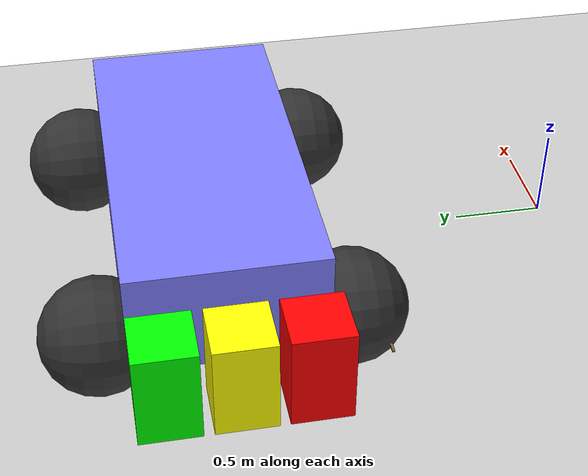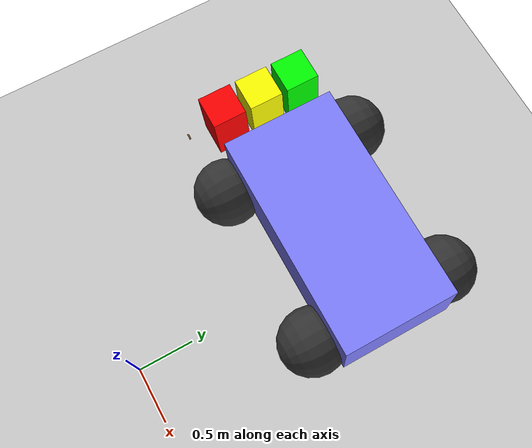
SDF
<?xml version="1.0" ?>
<sdf version="1.6">
  <world name="detachable_join">

    <physics name="1ms" type="ode">
      <max_step_size>0.001</max_step_size>
      <real_time_factor>1.0</real_time_factor>
    </physics>
    <plugin
      filename="libignition-gazebo-physics-system.so"
      name="ignition::gazebo::systems::Physics">
    </plugin>
    <plugin
      filename="libignition-gazebo-user-commands-system.so"
      name="ignition::gazebo::systems::UserCommands">
    </plugin>
    <plugin
      filename="libignition-gazebo-scene-broadcaster-system.so"
      name="ignition::gazebo::systems::SceneBroadcaster">
    </plugin>

    <light type="directional" name="sun">
      <cast_shadows>true</cast_shadows>
      <pose>0 0 10 0 0 0</pose>
      <diffuse>1 1 1 1</diffuse>
      <specular>0.5 0.5 0.5 1</specular>
      <attenuation>
        <range>1000</range>
        <constant>0.9</constant>
        <linear>0.01</linear>
        <quadratic>0.001</quadratic>
      </attenuation>
      <direction>-0.5 0.1 -0.9</direction>
    </light>

    <model name="ground_plane">
      <static>true</static>
      <link name="link">
        <collision name="collision">
          <geometry>
            <plane>
              <normal>0 0 1</normal>
            </plane>
          </geometry>
        </collision>
        <visual name="visual">
          <geometry>
            <plane>
              <normal>0 0 1</normal>
              <size>100 100</size>
            </plane>
          </geometry>
          <material>
            <ambient>0.8 0.8 0.8 1</ambient>
            <diffuse>0.8 0.8 0.8 1</diffuse>
            <specular>0.8 0.8 0.8 1</specular>
          </material>
        </visual>
      </link>
    </model>

    <model name='vehicle_blue'>
      <pose>0 2 0.325 0 -0 0</pose>
      <self_collide>true</self_collide>

      <link name='chassis'>
        <pose>-0.151427 -0 0.175 0 -0 0</pose>
        <inertial>
          <mass>1.14395</mass>
          <inertia>
            <ixx>0.126164</ixx>
            <ixy>0</ixy>
            <ixz>0</ixz>
            <iyy>0.416519</iyy>
            <iyz>0</iyz>
            <izz>0.481014</izz>
          </inertia>
        </inertial>
        <visual name='visual'>
          <geometry>
            <box>
              <size>2.01142 1 0.568726</size>
            </box>
          </geometry>
          <material>
            <ambient>0.5 0.5 1.0 1</ambient>
            <diffuse>0.5 0.5 1.0 1</diffuse>
            <specular>0.0 0.0 1.0 1</specular>
          </material>
        </visual>
        <collision name='collision'>
          <geometry>
            <box>
              <size>2.01142 1 0.568726</size>
            </box>
          </geometry>
        </collision>
      </link>

      <link name='front_left_wheel'>
        <pose>0.554283 0.625029 -0.025 -1.5707 0 0</pose>
        <inertial>
          <mass>2</mass>
          <inertia>
            <ixx>0.145833</ixx>
            <ixy>0</ixy>
            <ixz>0</ixz>
            <iyy>0.145833</iyy>
            <iyz>0</iyz>
            <izz>0.125</izz>
          </inertia>
        </inertial>
        <visual name='visual'>
          <geometry>
            <sphere>
              <radius>0.3</radius>
            </sphere>
          </geometry>
          <material>
            <ambient>0.2 0.2 0.2 1</ambient>
            <diffuse>0.2 0.2 0.2 1</diffuse>
            <specular>0.2 0.2 0.2 1</specular>
          </material>
        </visual>
        <collision name='collision'>
          <geometry>
            <sphere>
              <radius>0.3</radius>
            </sphere>
          </geometry>
          <surface>
            <friction>
              <ode>
                <mu>1</mu>
                <mu2>1</mu2>
                <slip1>0.035</slip1>
                <slip2>0</slip2>
                <fdir1>0 0 1</fdir1>
              </ode>
            </friction>
          </surface>
        </collision>
      </link>

      <link name='rear_left_wheel'>
        <pose>-0.957138 0.625029 -0.025 -1.5707 0 0</pose>
        <inertial>
          <mass>2</mass>
          <inertia>
            <ixx>0.145833</ixx>
            <ixy>0</ixy>
            <ixz>0</ixz>
            <iyy>0.145833</iyy>
            <iyz>0</iyz>
            <izz>0.125</izz>
          </inertia>
        </inertial>
        <visual name='visual'>
          <geometry>
            <sphere>
              <radius>0.3</radius>
            </sphere>
          </geometry>
          <material>
            <ambient>0.2 0.2 0.2 1</ambient>
            <diffuse>0.2 0.2 0.2 1</diffuse>
            <specular>0.2 0.2 0.2 1</specular>
          </material>
        </visual>
        <collision name='collision'>
          <geometry>
            <sphere>
              <radius>0.3</radius>
            </sphere>
          </geometry>
          <surface>
            <friction>
              <ode>
                <mu>1</mu>
                <mu2>1</mu2>
                <slip1>0.035</slip1>
                <slip2>0</slip2>
                <fdir1>0 0 1</fdir1>
              </ode>
            </friction>
          </surface>
        </collision>
      </link>

      <link name='front_right_wheel'>
        <pose>0.554282 -0.625029 -0.025 -1.5707 0 0</pose>
        <inertial>
          <mass>2</mass>
          <inertia>
            <ixx>0.145833</ixx>
            <ixy>0</ixy>
            <ixz>0</ixz>
            <iyy>0.145833</iyy>
            <iyz>0</iyz>
            <izz>0.125</izz>
          </inertia>
        </inertial>
        <visual name='visual'>
          <geometry>
            <sphere>
              <radius>0.3</radius>
            </sphere>
          </geometry>
          <material>
            <ambient>0.2 0.2 0.2 1</ambient>
            <diffuse>0.2 0.2 0.2 1</diffuse>
            <specular>0.2 0.2 0.2 1</specular>
          </material>
        </visual>
        <collision name='collision'>
          <geometry>
            <sphere>
              <radius>0.3</radius>
            </sphere>
          </geometry>
          <surface>
            <friction>
              <ode>
                <mu>1</mu>
                <mu2>1</mu2>
                <slip1>0.035</slip1>
                <slip2>0</slip2>
                <fdir1>0 0 1</fdir1>
              </ode>
            </friction>
          </surface>
        </collision>
      </link>

      <link name='rear_right_wheel'>
        <pose>-0.957138 -0.625029 -0.025 -1.5707 0 0</pose>
        <inertial>
          <mass>2</mass>
          <inertia>
            <ixx>0.145833</ixx>
            <ixy>0</ixy>
            <ixz>0</ixz>
            <iyy>0.145833</iyy>
            <iyz>0</iyz>
            <izz>0.125</izz>
          </inertia>
        </inertial>
        <visual name='visual'>
          <geometry>
            <sphere>
              <radius>0.3</radius>
            </sphere>
          </geometry>
          <material>
            <ambient>0.2 0.2 0.2 1</ambient>
            <diffuse>0.2 0.2 0.2 1</diffuse>
            <specular>0.2 0.2 0.2 1</specular>
          </material>
        </visual>
        <collision name='collision'>
          <geometry>
            <sphere>
              <radius>0.3</radius>
            </sphere>
          </geometry>
          <surface>
            <friction>
              <ode>
                <mu>1</mu>
                <mu2>1</mu2>
                <slip1>0.035</slip1>
                <slip2>0</slip2>
                <fdir1>0 0 1</fdir1>
              </ode>
            </friction>
          </surface>
        </collision>
      </link>

      <joint name='front_left_wheel_joint' type='revolute'>
        <parent>chassis</parent>
        <child>front_left_wheel</child>
        <axis>
          <xyz>0 0 1</xyz>
          <limit>
            <lower>-1.79769e+308</lower>
            <upper>1.79769e+308</upper>
          </limit>
        </axis>
      </joint>

      <joint name='front_right_wheel_joint' type='revolute'>
        <parent>chassis</parent>
        <child>front_right_wheel</child>
        <axis>
          <xyz>0 0 1</xyz>
          <limit>
            <lower>-1.79769e+308</lower>
            <upper>1.79769e+308</upper>
          </limit>
        </axis>
      </joint>

      <joint name='rear_left_wheel_joint' type='revolute'>
        <parent>chassis</parent>
        <child>rear_left_wheel</child>
        <axis>
          <xyz>0 0 1</xyz>
          <limit>
            <lower>-1.79769e+308</lower>
            <upper>1.79769e+308</upper>
          </limit>
        </axis>
      </joint>

      <joint name='rear_right_wheel_joint' type='revolute'>
        <parent>chassis</parent>
        <child>rear_right_wheel</child>
        <axis>
          <xyz>0 0 1</xyz>
          <limit>
            <lower>-1.79769e+308</lower>
            <upper>1.79769e+308</upper>
          </limit>
        </axis>
      </joint>

      <plugin
        filename="libignition-gazebo-diff-drive-system.so"
        name="ignition::gazebo::systems::DiffDrive">
        <left_joint>front_left_wheel_joint</left_joint>
        <left_joint>rear_left_wheel_joint</left_joint>
        <right_joint>front_right_wheel_joint</right_joint>
        <right_joint>rear_right_wheel_joint</right_joint>
        <wheel_separation>1.25</wheel_separation>
        <wheel_radius>0.3</wheel_radius>
      </plugin>

      <plugin filename="libignition-gazebo-detachable-joint-system.so" name="ignition::gazebo::systems::DetachableJoint">
       <parent_link>chassis</parent_link>
       <child_model>B1</child_model>
       <child_link>body</child_link>
       <topic>/B1/detach</topic>
       <attach_topic>/B1/attach</attach_topic>
      </plugin>
      <plugin filename="libignition-gazebo-detachable-joint-system.so" name="ignition::gazebo::systems::DetachableJoint">
       <parent_link>chassis</parent_link>
       <child_model>B2</child_model>
       <child_link>body</child_link>
       <topic>/B2/detach</topic>
      </plugin>
      <plugin filename="libignition-gazebo-detachable-joint-system.so" name="ignition::gazebo::systems::DetachableJoint">
       <parent_link>chassis</parent_link>
       <child_model>B3</child_model>
       <child_link>body</child_link>
       <topic>/B3/detach</topic>
      </plugin>

      <plugin filename="libignition-gazebo-detachable-joint-system.so" name="ignition::gazebo::systems::DetachableJoint">
       <parent_link>chassis</parent_link>
       <child_model>jenga_block</child_model>
       <child_link>link</child_link>
       <topic>/jenga/detach</topic>
       <attach_topic>/jenga/attach</attach_topic>
      </plugin>

    </model>

    <model name="B1">
      <pose>-1.5 2.35 0.5 0 -0 0</pose>
      <link name='body'>
        <inertial>
          <mass>0.6</mass>
          <inertia>
            <ixx>0.017</ixx> <ixy>0</ixy> <ixz>0</ixz>
            <iyy>0.017</iyy> <iyz>0</iyz> <izz>0.009</izz>
          </inertia>
        </inertial>
        <visual name='visual'>
          <geometry><box><size>0.3 0.3 0.5</size></box></geometry>
          <material><ambient>0.0 1.0 0.0 1</ambient><diffuse>0.0 1.0 0.0 1</diffuse><specular>0.5 0.5 0.5 1</specular></material>
        </visual>
        <collision name='collision'><geometry><box><size>0.3 0.3 0.5</size></box></geometry></collision>
      </link>
    </model>
    <model name="B2">
      <pose>-1.5 2 0.5 0 -0 0</pose>
      <link name='body'>
        <inertial>
          <mass>0.6</mass>
          <inertia>
            <ixx>0.017</ixx> <ixy>0</ixy> <ixz>0</ixz>
            <iyy>0.017</iyy> <iyz>0</iyz> <izz>0.009</izz>
          </inertia>
        </inertial>
        <visual name='visual'>
          <geometry><box><size>0.3 0.3 0.5</size></box></geometry>
          <material><ambient>1 1 0 1</ambient><diffuse>1 1 0 1</diffuse><specular>0.5 0.5 0.5 1</specular></material>
        </visual>
        <collision name='collision'><geometry><box><size>0.3 0.3 0.5</size></box></geometry></collision>
      </link>
    </model>
    <model name="B3">
      <pose>-1.5 1.65 0.5 0 -0 0</pose>
      <link name='body'>
        <inertial>
          <mass>0.6</mass>
          <inertia>
            <ixx>0.017</ixx> <ixy>0</ixy> <ixz>0</ixz>
            <iyy>0.017</iyy> <iyz>0</iyz> <izz>0.009</izz>
          </inertia>
        </inertial>
        <visual name='visual'>
          <geometry><box><size>0.3 0.3 0.5</size></box></geometry>
          <material><ambient>1.0 0.0 0.0 1</ambient><diffuse>1.0 0.0 0.0 1</diffuse><specular>0.5 0.5 0.5 1</specular></material>
        </visual>
        <collision name='collision'><geometry><box><size>0.3 0.3 0.5</size></box></geometry></collision>
      </link>
  </model>

  <model name="jenga_block">
    <pose>-1.5 1.3 0.5 0 0 0</pose>
    <link name="link">
      <inertial>
        <mass>0.0073</mass>
        <inertia>
          <ixx>7.6e-07</ixx> <ixy>0</ixy> <ixz>0</ixz>
          <iyy>7.6e-07</iyy> <iyz>0</iyz> <izz>7.6e-07</izz>
        </inertia>
      </inertial>

      <collision name="collision_main">
        <pose>0 0 0.00445 0 0 0</pose>
        <geometry><box><size>0.052 0.013 0.0089</size></box></geometry>
        <surface>
          <contact>
            <ode><kp>100000</kp><kd>100</kd><min_depth>0.001</min_depth></ode>
          </contact>
          <friction>
            <ode><mu>1.0</mu><mu2>1.0</mu2></ode>
          </friction>
        </surface>
      </collision>

      <collision name="collision_label">
        <pose>0 0 0.0089 0 0 0</pose>
        <geometry><box><size>0.017 0.011 0.0005</size></box></geometry>
        <surface>
          <contact>
            <ode><kp>100000</kp><kd>100</kd><min_depth>0.001</min_depth></ode>
          </contact>
          <friction>
            <ode><mu>1.0</mu><mu2>1.0</mu2></ode>
          </friction>
        </surface>
      </collision>

      <visual name="visual">
        <pose>0 0 0.00445 0 0 0</pose>
        <geometry><box><size>0.052 0.013 0.0089</size></box></geometry>
        <material><ambient>0.6 0.4 0.2 1</ambient><diffuse>0.6 0.4 0.2 1</diffuse></material>
      </visual>
      <visual name="top_label">
        <pose>0 0 0.0089 0 0 0</pose>
        <geometry><box><size>0.017 0.011 0.0005</size></box></geometry>
        <material><ambient>0.25 0.45 0.50 1</ambient><diffuse>0.30 0.55 0.60 1</diffuse></material>
      </visual>
    </link>
  </model>

</world>
</sdf>
